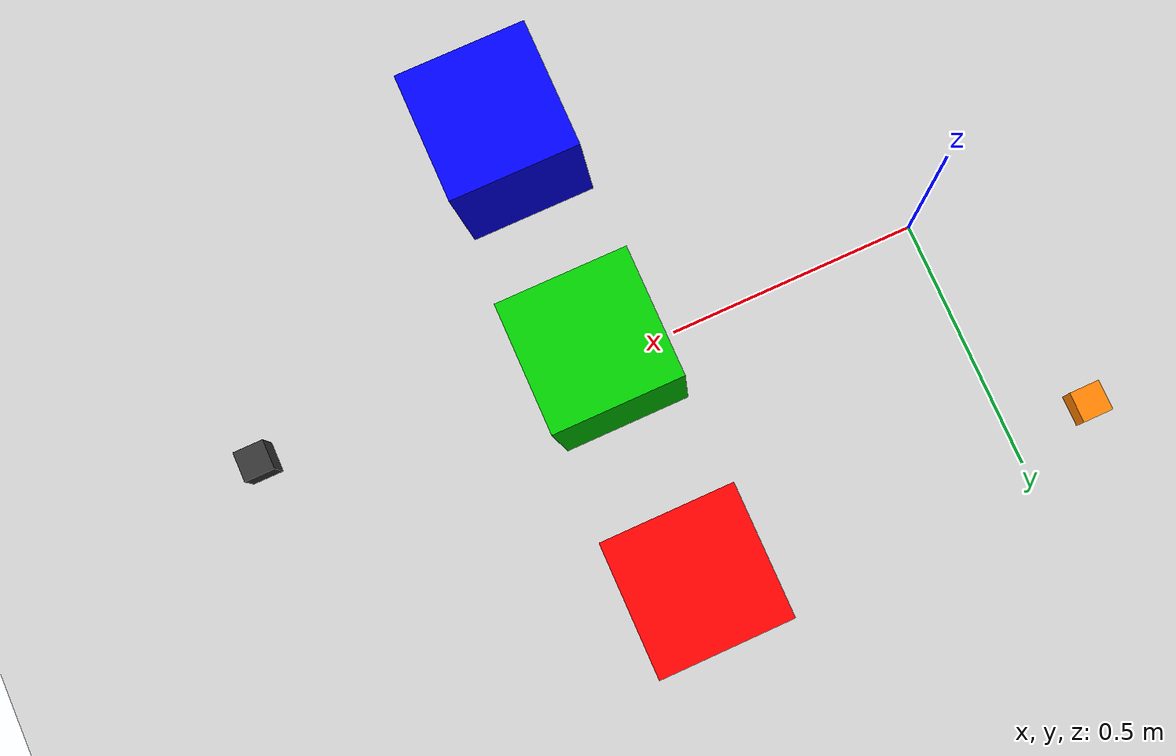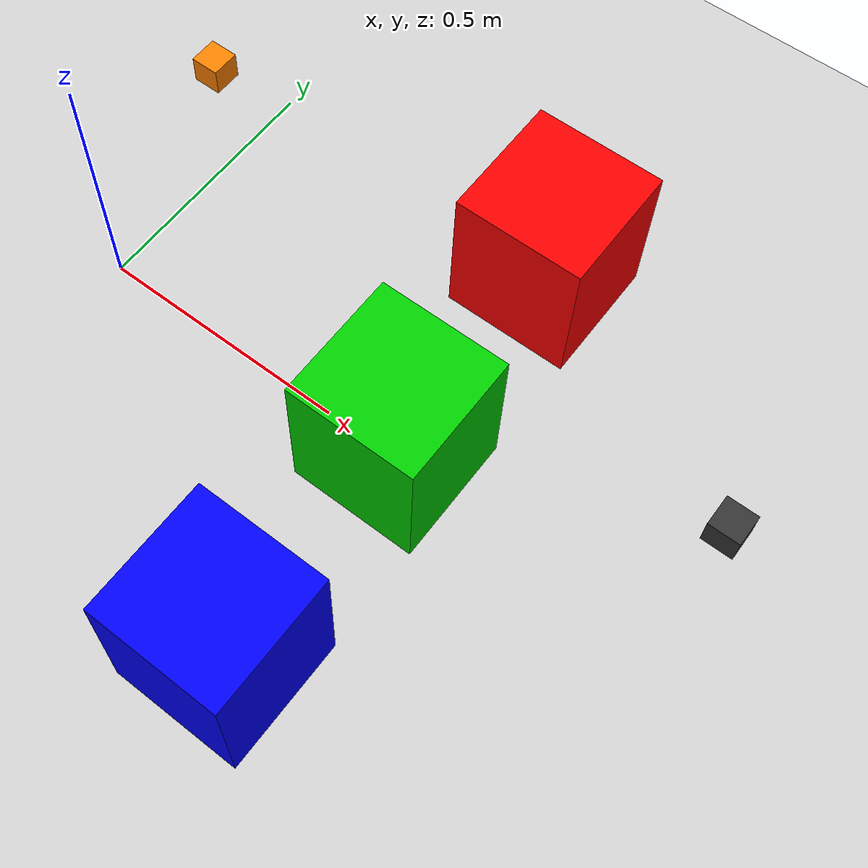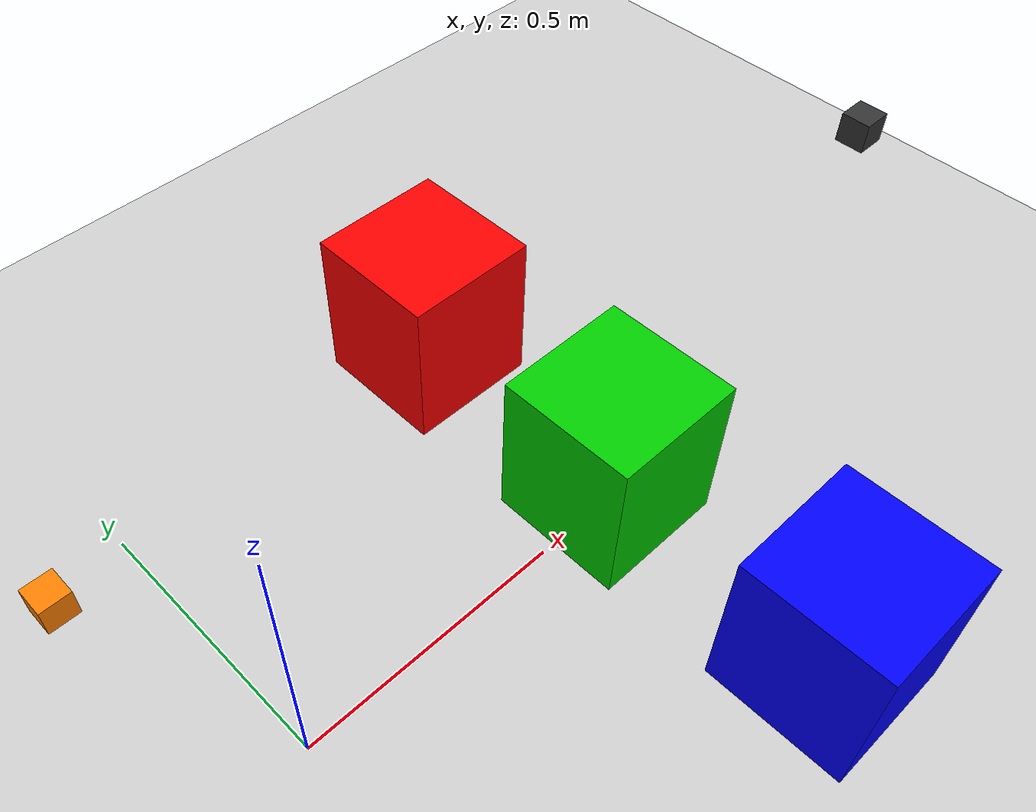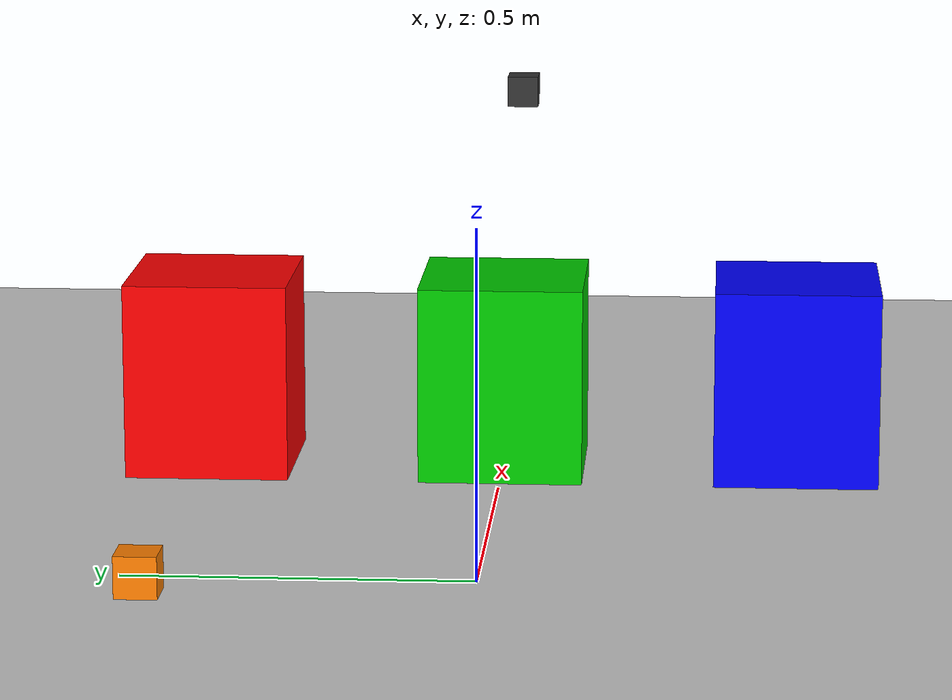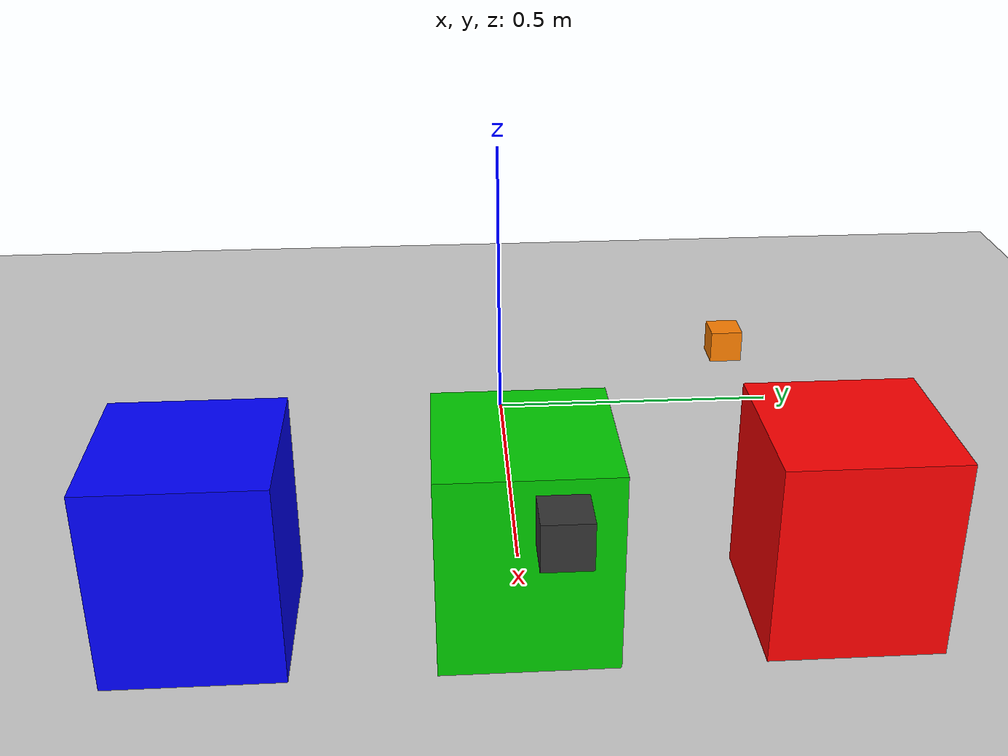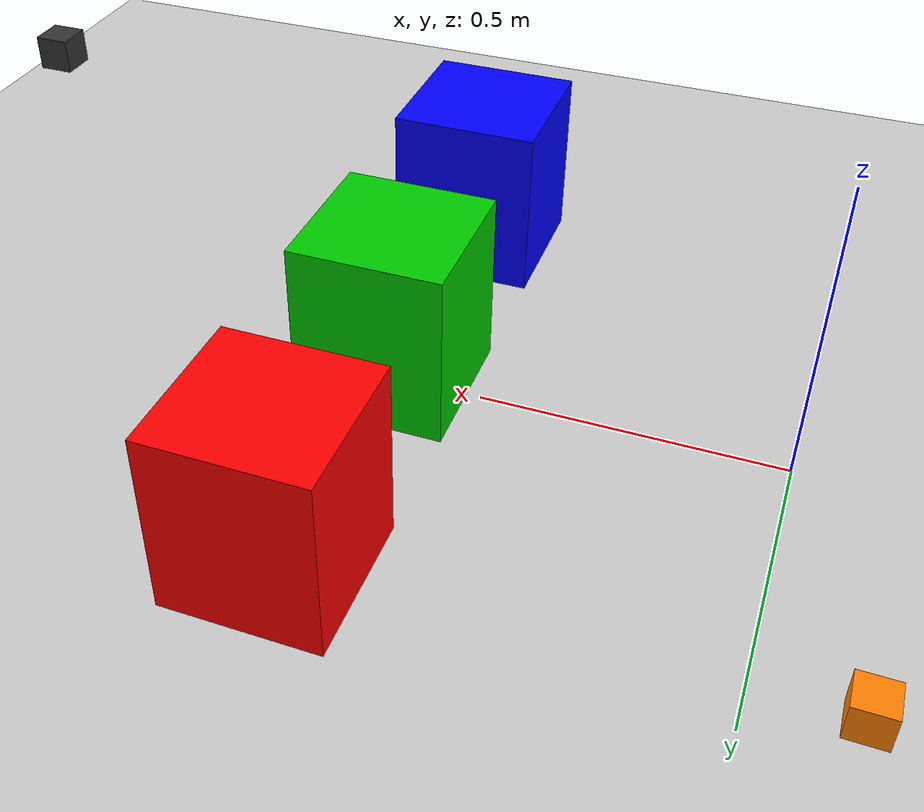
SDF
<?xml version="1.0" ?>
<sdf version="1.6">
  <world name="pick_scan_place_world">

    <!-- Expose /gazebo/set_entity_state and /gazebo/get_entity_state -->
    <plugin name="gazebo_ros_state" filename="libgazebo_ros_state.so">
      <ros><namespace>/gazebo</namespace></ros>
      <update_rate>10.0</update_rate>
    </plugin>

    <include><uri>model://sun</uri></include>
    <include><uri>model://ground_plane</uri></include>

    <!-- ═══════════════════ BINS ═══════════════════ -->

    <!-- BIN A - FOOD - red -->
    <model name="bin_a">
      <static>true</static>
      <pose>0.65 0.45 0.15 0 0 0</pose>
      <link name="link">
        <visual name="visual">
          <geometry><box><size>0.25 0.25 0.3</size></box></geometry>
          <material><ambient>1 0 0 1</ambient></material>
        </visual>
        <collision name="collision">
          <geometry><box><size>0.25 0.25 0.3</size></box></geometry>
        </collision>
      </link>
    </model>

    <!-- BIN B - HOME - green -->
    <model name="bin_b">
      <static>true</static>
      <pose>0.65 0.0 0.15 0 0 0</pose>
      <link name="link">
        <visual name="visual">
          <geometry><box><size>0.25 0.25 0.3</size></box></geometry>
          <material><ambient>0 0.8 0 1</ambient></material>
        </visual>
        <collision name="collision">
          <geometry><box><size>0.25 0.25 0.3</size></box></geometry>
        </collision>
      </link>
    </model>

    <!-- BIN C - ELECTRONICS - blue -->
    <model name="bin_c">
      <static>true</static>
      <pose>0.65 -0.45 0.15 0 0 0</pose>
      <link name="link">
        <visual name="visual">
          <geometry><box><size>0.25 0.25 0.3</size></box></geometry>
          <material><ambient>0 0 1 1</ambient></material>
        </visual>
        <collision name="collision">
          <geometry><box><size>0.25 0.25 0.3</size></box></geometry>
        </collision>
      </link>
    </model>

    <!-- ═══════════════════ PICK OBJECT ═══════════════════ -->
    <model name="pick_object">
      <pose>-0.15 0.45 0.05 0 0 0</pose>
      <link name="link">
        <visual name="visual">
          <geometry><box><size>0.06 0.06 0.06</size></box></geometry>
          <material><ambient>1 0.5 0 1</ambient></material>
        </visual>
        <collision name="collision">
          <geometry><box><size>0.06 0.06 0.06</size></box></geometry>
        </collision>
        <inertial>
          <mass>0.1</mass>
          <inertia>
            <ixx>0.0001</ixx><ixy>0</ixy><ixz>0</ixz>
            <iyy>0.0001</iyy><iyz>0</iyz><izz>0.0001</izz>
          </inertia>
        </inertial>
      </link>
    </model>

    <!-- ═══════════════════ SCAN CAMERA ═══════════════════ -->
    <model name="scan_camera">
      <static>true</static>
      <pose>1.2 0.0 0.5 0 0 3.14159</pose>
      <link name="link">
        <visual name="visual">
          <geometry><box><size>0.05 0.05 0.05</size></box></geometry>
          <material><ambient>0.2 0.2 0.2 1</ambient></material>
        </visual>
        <sensor name="camera" type="camera">
          <camera>
            <horizontal_fov>1.047</horizontal_fov>
            <image>
              <width>640</width>
              <height>480</height>
              <format>R8G8B8</format>
            </image>
            <clip><near>0.05</near><far>5.0</far></clip>
          </camera>
          <always_on>true</always_on>
          <update_rate>10</update_rate>
          <visualize>true</visualize>
          <plugin name="camera_plugin" filename="libgazebo_ros_camera.so">
            <ros><namespace>/scan_camera</namespace></ros>
            <camera_name>scan_camera</camera_name>
            <frame_name>scan_camera_link</frame_name>
          </plugin>
        </sensor>
      </link>
    </model>

  </world>
</sdf>
